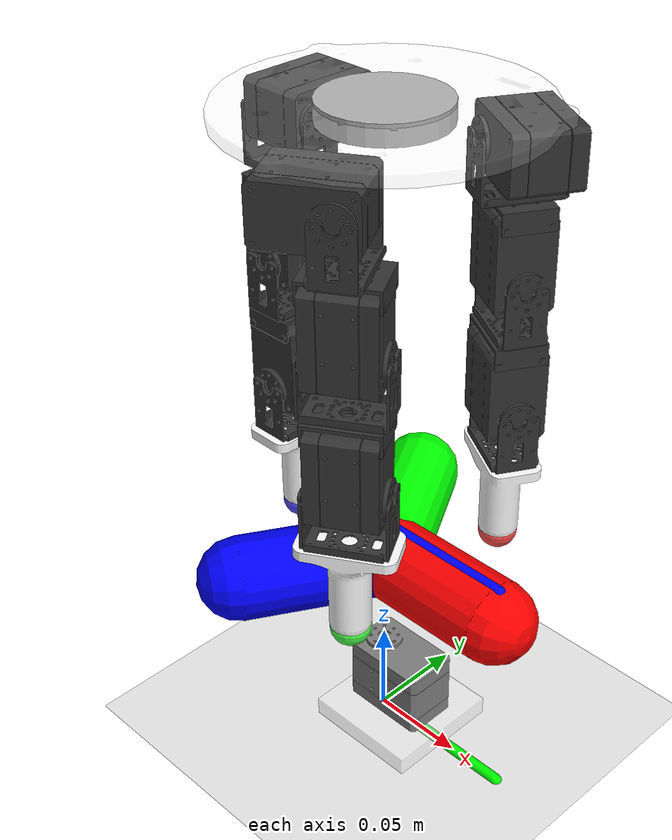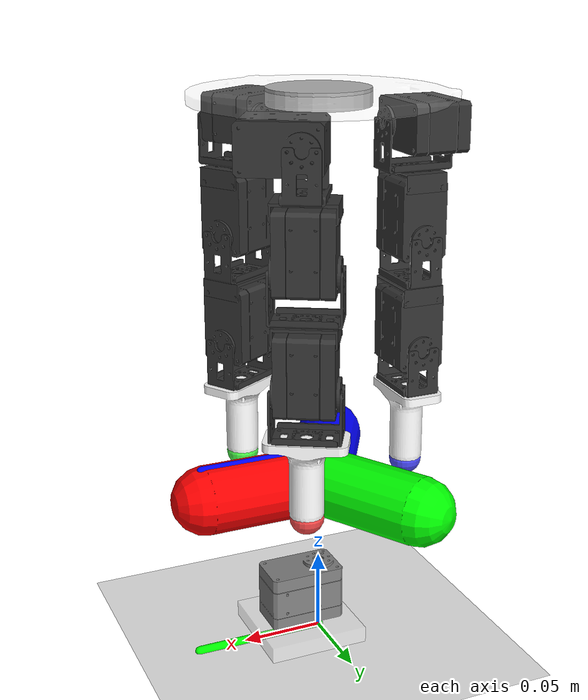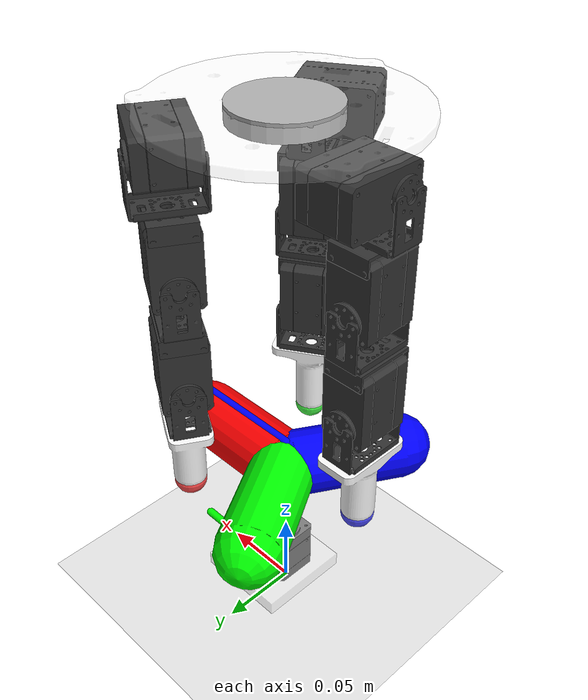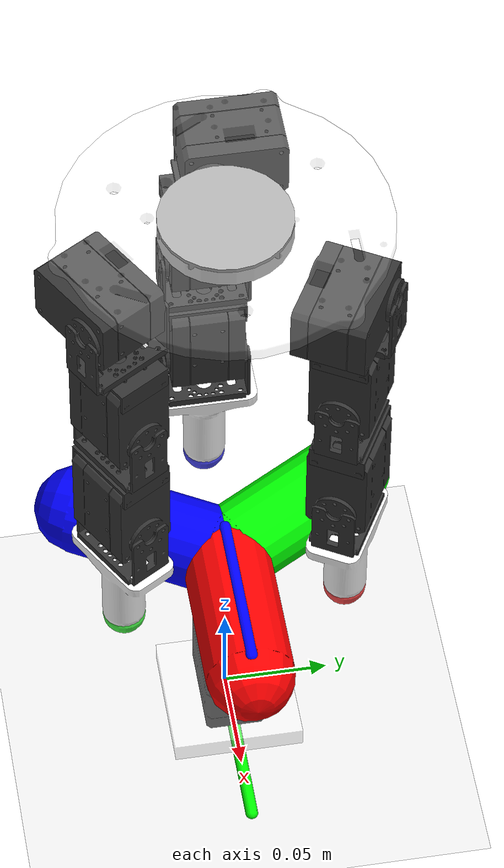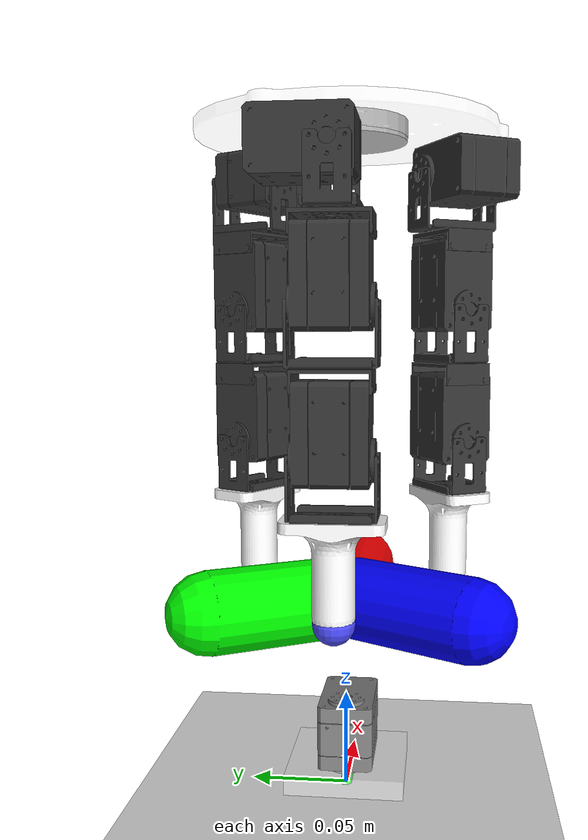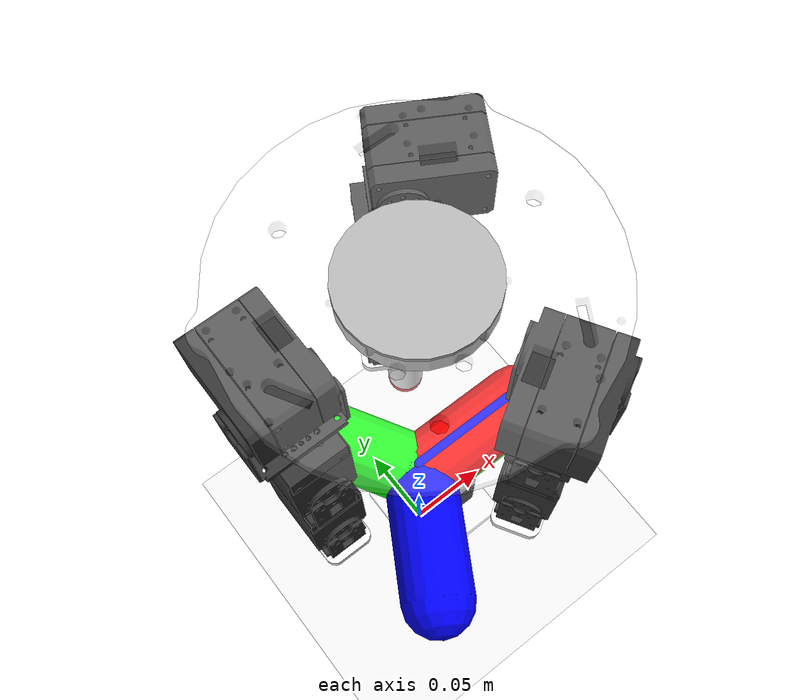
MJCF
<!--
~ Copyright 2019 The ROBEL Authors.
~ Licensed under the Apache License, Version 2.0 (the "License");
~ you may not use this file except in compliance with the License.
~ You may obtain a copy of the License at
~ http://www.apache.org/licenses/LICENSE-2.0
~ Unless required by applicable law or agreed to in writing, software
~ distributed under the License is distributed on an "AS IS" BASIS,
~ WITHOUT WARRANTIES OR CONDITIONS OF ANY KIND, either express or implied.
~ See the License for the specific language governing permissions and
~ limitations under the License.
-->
<?xml version="1.0"?>
<mujoco model="dclaw3xh_valve3">
  <include file="../../robel-scenes/scenes/basic_scene.xml"/>
  <include file="../../robel-scenes/dclaw/assets/dependencies3xh.xml"/>
  <include file="../../robel-scenes/dclaw_stations/assets/dependencies.xml"/>
  <compiler meshdir="../../robel-scenes/dclaw" texturedir="../../robel-scenes/dclaw"/>
  <worldbody>
    <camera name="targeting" pos="0.5 0.5 0.5" mode="targetbodycom" target="dClaw"/>
    <camera name="object_target" pos="0 0 0.33" mode="targetbody" target="object"/>
    <body name="mount" pos="0 0 .335" euler="0 0 0">
      <geom name="mount" type="cylinder" size="0.03 0.005" rgba=".7 .7 .7 1"/>
      <include file="../../robel-scenes/dclaw/assets/chain3xh.xml"/>
      <include file="../../robel-scenes/dclaw/assets/chain3xh_overlay.xml"/>
    </body>
    <body name="object" pos="0 0 0.0001">
      <include file="../../robel-scenes/dclaw_stations/assets/valve3.xml"/>
    </body>
    <body name="target" pos="0 0 0">
      <site name="tmark" type="capsule" size=".003 0.04" pos=".04 0 0" rgba="0 1 0 1" euler="0 1.57 0"/>
    </body>
  </worldbody>
</mujoco>

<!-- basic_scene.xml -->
<mujocoinclude>
  <asset>
    <texture name="skybox" type="skybox" builtin="gradient" rgb1=".08 .09 .10" rgb2="0 0 0" width="800" height="800" mark="random" markrgb=".8 .8 .8"/>
    <texture name="texplane" type="2d" height="1" width="1" file="../scenes/textures/white_marble_tile2.png"/>
    <material name="MatPlane" reflectance="0.05" texture="texplane" texrepeat="4 4" texuniform="true"/>
  </asset>
  <visual>
    <map fogstart="1.5" fogend="5" force="0.1" znear="0.1"/>
    <quality shadowsize="4096" offsamples="4"/>
  </visual>
  <worldbody>
    <light directional="true" diffuse=".3 .3 .3" specular="0.3 0.3 0.3" pos="-1 -1 1" dir="1 1 -1"/>
    <light directional="true" diffuse=".3 .3 .3" specular="0.3 0.3 0.3" pos="1 -1 1" dir="-1 1 -1"/>
    <light directional="true" diffuse=".3 .3 .3" specular="0.3 0.3 0.3" pos="0 1 1" dir="0 -1 -1"/>
    <geom name="floor" pos="0 0 0" size="5 5 .1" conaffinity="1" contype="1" type="plane" material="MatPlane" condim="3"/>
    <site name="xaxis" pos=".5 0 0" size=".005 .5" type="capsule" rgba="1 0 0 .25" euler="0 1.57 0" group="3"/>
    <site name="yaxis" pos="0 .5 0" size=".005 .5" type="capsule" rgba="0 1 0 .25" euler="1.57 0 0" group="3"/>
  </worldbody>
</mujocoinclude>

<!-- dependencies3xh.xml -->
<mujocoinclude>
  <compiler angle="radian" inertiafromgeom="auto" inertiagrouprange="3 5"/>
  <option timestep="0.0025" iterations="50" tolerance="1e-10" solver="Newton" jacobian="dense" cone="elliptic"/>
  <asset>
    <mesh name="xh28" file="../dclaw/meshes/xh_base_high_poly.stl" scale=".001 .001 .001"/>
    <mesh name="acrylic_circle" file="../dclaw/meshes/acrylic_circle.stl" scale=".1 .1 .1"/>
    <mesh name="plastic_finger" file="../dclaw/meshes/xh_finger_tip.stl" scale=".001 .001 .001"/>
    <mesh name="metal_clamping" file="../dclaw/meshes/xh_clamping_high_poly.stl" scale=".001 .001 .001"/>
    <mesh name="metal_clamping_small" file="../dclaw/meshes/xh_clamping_small_high_poly.stl" scale=".001 .001 .001"/>
    <mesh name="plastic_top" file="../dclaw/meshes/xh_white_top_high_poly.stl" scale=".001 .001 .001"/>
    <mesh name="xh28_hull" file="../dclaw/meshes/xh_base_hull.stl" scale=".001 .001 .001"/>
    <mesh name="xh28_hull_top" file="../dclaw/meshes/xh_base_hull_top.stl" scale=".001 .001 .001"/>
  </asset>
  <default>
    <default class="dclaw3xh">
      <joint limited="true" damping=".1" armature="0.001"/>
      <geom contype="0" conaffinity="0" condim="4" group="1" margin="0.0005" material="metal_black" type="mesh"/>
      <motor ctrlrange="-1.57 1.57" ctrllimited="true"/>
      <site group="1"/>
      <default class="overlay">
        <geom contype="0" conaffinity="0" group="3" type="mesh" material="greenish"/>
        <joint damping="100" frictionloss="100" armature="0"/>
        <site group="3"/>
      </default>
      <default class="phy_metal">
        <geom contype="1" conaffinity="1" group="4" type="mesh" rgba="0.0 0.0 1.0 .3"/>
        <site group="4"/>
      </default>
      <default class="phy_plastic">
        <geom contype="1" conaffinity="1" group="4" type="mesh" rgba="0.0 0.0 1.0 .3" friction=".2 0.005 0.0001"/>
        <site group="4"/>
      </default>
    </default>
  </default>
  <asset>
    <material name="metal_black" specular="1" shininess="1" rgba="0.2 0.2 0.2 1.0"/>
    <material name="metal_grey" specular="1" shininess="1" rgba="0.5 0.5 0.5 1.0"/>
    <material name="plastic" specular="0.3" shininess="0" rgba="1 1 1 1"/>
    <material name="acrylic" specular="0.3" shininess="0" rgba="1 1 1 .2"/>
    <material name="greenish" specular="0.0" shininess="0" rgba="0.3 1 0.3 1"/>
  </asset>
  <actuator>
    <position name="FFJ10" kp="2" joint="FFJ10" class="dclaw3xh" ctrlrange="-.48 .48"/>
    <position name="FFJ11" kp="2" joint="FFJ11" class="dclaw3xh"/>
    <position name="FFJ12" kp="2" joint="FFJ12" class="dclaw3xh"/>
    <position name="MFJ20" kp="2" joint="MFJ20" class="dclaw3xh" ctrlrange="-.48 .48"/>
    <position name="MFJ21" kp="2" joint="MFJ21" class="dclaw3xh"/>
    <position name="MFJ22" kp="2" joint="MFJ22" class="dclaw3xh"/>
    <position name="THJ30" kp="2" joint="THJ30" class="dclaw3xh" ctrlrange="-.48 .48"/>
    <position name="THJ31" kp="2" joint="THJ31" class="dclaw3xh"/>
    <position name="THJ32" kp="2" joint="THJ32" class="dclaw3xh"/>
  </actuator>
  <sensor>
    <jointpos name="FFJ10_pos_sensor" joint="FFJ10"/>
    <jointpos name="FFJ11_pos_sensor" joint="FFJ11"/>
    <jointpos name="FFJ12_pos_sensor" joint="FFJ12"/>
    <jointpos name="MFJ20_pos_sensor" joint="MFJ20"/>
    <jointpos name="MFJ21_pos_sensor" joint="MFJ21"/>
    <jointpos name="MFJ22_pos_sensor" joint="MFJ22"/>
    <jointpos name="THJ30_pos_sensor" joint="THJ30"/>
    <jointpos name="THJ31_pos_sensor" joint="THJ31"/>
    <jointpos name="THJ32_pos_sensor" joint="THJ32"/>
    <jointvel name="FFJ10_velocity_sensor" joint="FFJ10"/>
    <jointvel name="FFJ11_velocity_sensor" joint="FFJ11"/>
    <jointvel name="FFJ12_velocity_sensor" joint="FFJ12"/>
    <jointvel name="MFJ20_velocity_sensor" joint="MFJ20"/>
    <jointvel name="MFJ21_velocity_sensor" joint="MFJ21"/>
    <jointvel name="MFJ22_velocity_sensor" joint="MFJ22"/>
    <jointvel name="THJ30_velocity_sensor" joint="THJ30"/>
    <jointvel name="THJ31_velocity_sensor" joint="THJ31"/>
    <jointvel name="THJ32_velocity_sensor" joint="THJ32"/>
  </sensor>
</mujocoinclude>

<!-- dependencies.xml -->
<mujocoinclude>
  <compiler angle="radian" inertiafromgeom="auto" inertiagrouprange="3 5"/>
  <option timestep="0.0025"/>
  <asset>
    <mesh name="motor" file="../dclaw/meshes/xh_base_high_poly.stl" scale=".001 .001 .001"/>
    <mesh name="motor_hull" file="../dclaw/meshes/xh_base_hull.stl" scale=".001 .001 .001"/>
    <mesh name="valve_4" file="../dclaw_stations/meshes/valve_4_high_poly.stl" scale=".001 .001 .001"/>
    <mesh name="valve_3" file="../dclaw_stations/meshes/valve_3_high_poly.stl" scale=".001 .001 .001"/>
    <mesh name="station_base" file="../dclaw_stations/meshes/station_plastic_base.stl" scale=".001 .001 .001"/>
    <mesh name="station_metal_base" file="../dclaw_stations/meshes/station_metal_base.stl" scale=".001 .001 .001"/>
    <mesh name="station_surface" file="../dclaw_stations/meshes/station_surface.stl" scale=".001 .001 .001"/>
    <mesh name="station_plastic_walls" file="../dclaw_stations/meshes/station_plastic_walls.stl" scale=".001 .001 .001"/>
    <material name="station_metal_grey" specular="1" shininess="1" rgba="0.5 0.5 0.5 1.0"/>
    <material name="plastic_white" specular="0.3" shininess="0" rgba="1 1 1 1"/>
    <material name="plastic_grey" specular="0.3" shininess="0" rgba="0.5 0.5 0.5 1.0"/>
    <material name="plastic_black" specular="0.3" shininess="0" rgba="0.02 0.02 0.02 1.0"/>
    <material name="plastic_transparent" specular="0.3" shininess="0" rgba="1 1 1 0.4"/>
  </asset>
  <default>
    <default class="station">
      <joint limited="true" damping=".1" armature="0.001"/>
      <geom contype="1" conaffinity="1" condim="4" group="2" margin="0.0005"/>
      <site group="2"/>
      <default class="station_viz">
        <geom contype="0" conaffinity="0" type="mesh"/>
        <default class="station_viz_metal_grey">
          <geom material="station_metal_grey"/>
        </default>
        <default class="station_viz_plastic_black">
          <geom material="plastic_black"/>
        </default>
        <default class="station_viz_plastic_grey">
          <geom material="plastic_grey"/>
        </default>
        <default class="station_viz_plastic_white">
          <geom material="plastic_white"/>
        </default>
        <default class="station_viz_plastic_transparent">
          <geom material="plastic_transparent"/>
        </default>
      </default>
      <default class="station_phy">
        <geom contype="1" conaffinity="1" group="4" type="mesh" rgba="0.0 0.0 1.0 .3"/>
        <site group="4"/>
        <default class="station_phy_metal">
          <geom material="station_metal_grey"/>
        </default>
        <default class="station_phy_plastic">
          <geom material="station_metal_grey" friction=".2 0.005 0.0001"/>
        </default>
      </default>
    </default>
  </default>
</mujocoinclude>

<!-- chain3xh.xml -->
<mujocoinclude>
  <body name="dClaw" euler="3.14 0 0" childclass="dclaw3xh">
    <geom material="acrylic" mesh="acrylic_circle"/>
    <geom class="phy_metal" type="cylinder" size="0.075 0.004" mass=".11"/>
    <site name="S_grasp" pos="0 0 0.24" type="sphere" size="0.01" group="4"/>
    <!-- INDEX/FIRST FINGER -->
    <body name="FFbase" pos=".03 -0.052 .003" euler="0 0 .52">
      <geom mesh="xh28" pos="0 0 0.01425" euler="1.57 0 1.57"/>
      <geom class="phy_metal" type="box" pos=".012 0 0.014" size="0.024 0.0175 0.015" mass=".093"/>
      <body name="FF10" pos="0 0 0.01425" euler="0 0 3.14">
        <geom mesh="metal_clamping" euler="0 0 1.57"/>
        <geom mesh="metal_clamping_small" pos="0 0 0.055" euler="3.14 0 0"/>
        <geom mesh="xh28" pos="0 0 0.068" euler="1.57 1.57 0"/>
        <geom class="phy_metal" type="box" pos="0 0 0.056" size="0.0175 0.015 0.024" mass=".093"/>
        <geom class="phy_metal" type="box" pos="0.0 0 0.026" size="0.0125 0.0214 0.003" mass=".003"/>
        <geom class="phy_metal" type="box" pos="0 0.02 0.013" size="0.011 0.0012 0.016" mass=".002"/>
        <geom class="phy_metal" type="box" pos="0 -0.02 0.013" size="0.011 0.0012 0.016" mass=".002"/>
        <geom class="phy_metal" type="box" pos="0 0 0.033" size="0.019 0.014 0.006" mass=".005"/>
        <joint name="FFJ10" type="hinge" axis="0 1 0" range="-.45 1.35"/>
        <body name="FFL11" pos="0 0 0.0675">
          <geom mesh="metal_clamping_small" pos="0 0 0.055" euler="3.14 0 0"/>
          <geom mesh="xh28" pos="0 0 0.0686" euler="1.57 1.57 0"/>
          <geom mesh="metal_clamping"/>
          <geom class="phy_metal" type="box" pos="0 0 0.056" size="0.0175 0.015 0.024" mass=".093"/>
          <geom class="phy_metal" type="box" pos="0 0 0.026" size="0.0214 0.0125 0.003" mass=".003"/>
          <geom class="phy_metal" type="box" pos="0.02 0 0.013" size="0.0012 0.011 0.016" mass=".002"/>
          <geom class="phy_metal" type="box" pos="-0.02 0 0.013" size="0.0012 0.011 0.016" mass=".002"/>
          <geom class="phy_metal" type="box" pos="0 0 0.033" size="0.019 0.014 0.006" mass=".005"/>
          <joint name="FFJ11" type="hinge" axis="1 0 0" range="-2 2"/>
          <body name="FFL12" pos="0 0 0.068">
            <geom mesh="metal_clamping"/>
            <geom material="plastic" mesh="plastic_finger" pos="0 0 0.046"/>
            <geom class="phy_metal" type="box" pos="0.0 0 0.026" size="0.0214 0.0125 0.003" mass=".003"/>
            <geom class="phy_metal" type="box" pos="0.02 0 0.013" size="0.0012 0.011 0.016" mass=".002"/>
            <geom class="phy_metal" type="box" pos="-0.02 0 0.013" size="0.0012 0.011 0.016" mass=".002"/>
            <geom class="phy_plastic" type="capsule" pos="0 0 0.053" size="0.011 0.02" mass=".018"/>
            <geom class="phy_plastic" type="box" pos="0 0 0.03" size="0.0245 0.014 0.003" mass=".007"/>
            <joint name="FFJ12" type="hinge" axis="1 0 0" range="-2 2"/>
            <site name="FFtip" type="sphere" pos="0 0 .076" size="0.01" rgba="1 .3 .3 1"/>
          </body>
        </body>
      </body>
    </body>
    <!-- MIDDLE FINGER -->
    <body name="MFbase" pos=".03 0.052 .003" euler="0 0 2.6">
      <geom mesh="xh28" pos="0 0 0.01425" euler="1.57 0 1.57"/>
      <geom class="phy_metal" type="box" pos=".012 0 0.014" size="0.024 0.0175 0.015" mass=".093"/>
      <body name="MF20" pos="0 0 0.01425" euler="0 0 3.14">
        <geom mesh="metal_clamping" euler="0 0 1.57"/>
        <geom mesh="metal_clamping_small" pos="0 0 0.055" euler="3.14 0 0"/>
        <geom mesh="xh28" pos="0 0 0.068" euler="1.57 1.57 0"/>
        <geom class="phy_metal" type="box" pos="0 0 0.056" size="0.0175 0.015 0.024" mass=".093"/>
        <geom class="phy_metal" type="box" pos="0.0 0 0.026" size="0.0125 0.0214 0.003" mass=".003"/>
        <geom class="phy_metal" type="box" pos="0 0.02 0.013" size="0.011 0.0012 0.016" mass=".002"/>
        <geom class="phy_metal" type="box" pos="0 -0.02 0.013" size="0.011 0.0012 0.016" mass=".002"/>
        <geom class="phy_metal" type="box" pos="0 0 0.033" size="0.019 0.014 0.006" mass=".005"/>
        <joint name="MFJ20" type="hinge" axis="0 1 0" range="-.45 1.35"/>
        <body name="MFL21" pos="0 0 0.0675">
          <geom mesh="metal_clamping_small" pos="0 0 0.055" euler="3.14 0 0"/>
          <geom mesh="xh28" pos="0 0 0.0686" euler="1.57 1.57 0"/>
          <geom mesh="metal_clamping"/>
          <geom class="phy_metal" type="box" pos="0 0 0.056" size="0.0175 0.015 0.024" mass=".093"/>
          <geom class="phy_metal" type="box" pos="0 0 0.026" size="0.0214 0.0125 0.003" mass=".003"/>
          <geom class="phy_metal" type="box" pos="0.02 0 0.013" size="0.0012 0.011 0.016" mass=".002"/>
          <geom class="phy_metal" type="box" pos="-0.02 0 0.013" size="0.0012 0.011 0.016" mass=".002"/>
          <geom class="phy_metal" type="box" pos="0 0 0.033" size="0.019 0.014 0.006" mass=".005"/>
          <joint name="MFJ21" type="hinge" axis="1 0 0" range="-2 2"/>
          <body name="MFL22" pos="0 0 0.068">
            <geom mesh="metal_clamping"/>
            <geom material="plastic" mesh="plastic_finger" pos="0 0 0.046"/>
            <geom class="phy_metal" type="box" pos="0.0 0 0.026" size="0.0214 0.0125 0.003" mass=".003"/>
            <geom class="phy_metal" type="box" pos="0.02 0 0.013" size="0.0012 0.011 0.016" mass=".002"/>
            <geom class="phy_metal" type="box" pos="-0.02 0 0.013" size="0.0012 0.011 0.016" mass=".002"/>
            <geom class="phy_plastic" type="capsule" pos="0 0 0.053" size="0.011 0.02" mass=".018"/>
            <geom class="phy_plastic" type="box" pos="0 0 0.03" size="0.0245 0.014 0.003" mass=".007"/>
            <joint name="MFJ22" type="hinge" axis="1 0 0" range="-2 2"/>
            <site name="MFtip" type="sphere" pos="0 0 .076" size="0.01" rgba=".3 1 .3 1"/>
          </body>
        </body>
      </body>
    </body>
    <!-- THUMB -->
    <body name="THbase" pos="-.06 0 .003" euler="0 0 -1.57">
      <geom mesh="xh28" pos="0 0 0.01425" euler="1.57 0 1.57"/>
      <geom class="phy_metal" type="box" pos=".012 0 0.014" size="0.024 0.0175 0.015" mass=".093"/>
      <body name="TH30" pos="0 0 0.01425" euler="0 0 3.14">
        <geom mesh="metal_clamping" euler="0 0 1.57"/>
        <geom mesh="metal_clamping_small" pos="0 0 0.055" euler="3.14 0 0"/>
        <geom mesh="xh28" pos="0 0 0.068" euler="1.57 1.57 0"/>
        <geom class="phy_metal" type="box" pos="0 0 0.056" size="0.0175 0.015 0.024" mass=".093"/>
        <geom class="phy_metal" type="box" pos="0.0 0 0.026" size="0.0125 0.0214 0.003" mass=".003"/>
        <geom class="phy_metal" type="box" pos="0 0.02 0.013" size="0.011 0.0012 0.016" mass=".002"/>
        <geom class="phy_metal" type="box" pos="0 -0.02 0.013" size="0.011 0.0012 0.016" mass=".002"/>
        <geom class="phy_metal" type="box" pos="0 0 0.033" size="0.019 0.014 0.006" mass=".005"/>
        <joint name="THJ30" type="hinge" axis="0 1 0" range="-.45 1.35"/>
        <body name="THL31" pos="0 0 0.0675">
          <geom mesh="metal_clamping_small" pos="0 0 0.055" euler="3.14 0 0"/>
          <geom mesh="xh28" pos="0 0 0.0686" euler="1.57 1.57 0"/>
          <geom mesh="metal_clamping"/>
          <geom class="phy_metal" type="box" pos="0 0 0.056" size="0.0175 0.015 0.024" mass=".093"/>
          <geom class="phy_metal" type="box" pos="0 0 0.026" size="0.0214 0.0125 0.003" mass=".003"/>
          <geom class="phy_metal" type="box" pos="0.02 0 0.013" size="0.0012 0.011 0.016" mass=".002"/>
          <geom class="phy_metal" type="box" pos="-0.02 0 0.013" size="0.0012 0.011 0.016" mass=".002"/>
          <geom class="phy_metal" type="box" pos="0 0 0.033" size="0.019 0.014 0.006" mass=".005"/>
          <joint name="THJ31" type="hinge" axis="1 0 0" range="-2 2"/>
          <body name="THL32" pos="0 0 0.068">
            <geom mesh="metal_clamping"/>
            <geom material="plastic" mesh="plastic_finger" pos="0 0 0.046"/>
            <geom class="phy_metal" type="box" pos="0.0 0 0.026" size="0.0214 0.0125 0.003" mass=".003"/>
            <geom class="phy_metal" type="box" pos="0.02 0 0.013" size="0.0012 0.011 0.016" mass=".002"/>
            <geom class="phy_metal" type="box" pos="-0.02 0 0.013" size="0.0012 0.011 0.016" mass=".002"/>
            <geom class="phy_plastic" type="capsule" pos="0 0 0.053" size="0.011 0.02" mass=".018"/>
            <geom class="phy_plastic" type="box" pos="0 0 0.03" size="0.0245 0.014 0.003" mass=".007"/>
            <joint name="THJ32" type="hinge" axis="1 0 0" range="-2 2"/>
            <site name="THtip" type="sphere" pos="0 0 .076" size="0.01" rgba=".3 .3 1 1"/>
          </body>
        </body>
      </body>
    </body>
  </body>
</mujocoinclude>

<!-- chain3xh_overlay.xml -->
<mujocoinclude>
  <body name="_dclaw" euler="3.14 0 0" childclass="overlay">
    <geom mesh="acrylic_circle"/>
    <!-- INDEX/FIRST FINGER -->
    <body name="_FFbase" pos=".03 -0.052 .003" euler="0 0 .52">
      <geom mesh="xh28" pos="0 0 0.01425" euler="1.57 0 1.57"/>
      <body name="_FF10" pos="0 0 0.01425" euler="0 0 3.14">
        <geom mesh="metal_clamping" euler="0 0 1.57"/>
        <geom mesh="metal_clamping_small" pos="0 0 0.055" euler="3.14 0 0"/>
        <geom mesh="xh28" pos="0 0 0.068" euler="1.57 1.57 0"/>
        <joint name="_FFJ10" type="hinge" axis="0 1 0" range="-.45 1.35"/>
        <body name="_FFL11" pos="0 0 0.0675">
          <geom mesh="metal_clamping_small" pos="0 0 0.055" euler="3.14 0 0"/>
          <geom mesh="xh28" pos="0 0 0.0686" euler="1.57 1.57 0"/>
          <geom mesh="metal_clamping"/>
          <joint name="_FFJ11" type="hinge" axis="1 0 0" range="-2 2"/>
          <body name="_FFL12" pos="0 0 0.068">
            <geom mesh="metal_clamping"/>
            <geom mesh="plastic_finger" pos="0 0 0.046"/>
            <joint name="_FFJ12" type="hinge" axis="1 0 0" range="-2 2"/>
            <site name="_FFtip" type="sphere" pos="0 0 .076" size="0.01" rgba="1 .3 .3 1"/>
          </body>
        </body>
      </body>
    </body>
    <!-- MIDDLE FINGER -->
    <body name="_MFbase" pos=".03 0.052 .003" euler="0 0 2.62">
      <geom mesh="xh28" pos="0 0 0.01425" euler="1.57 0 1.57"/>
      <body name="_MF20" pos="0 0 0.01425" euler="0 0 3.14">
        <geom mesh="metal_clamping" euler="0 0 1.57"/>
        <geom mesh="metal_clamping_small" pos="0 0 0.055" euler="3.14 0 0"/>
        <geom mesh="xh28" pos="0 0 0.068" euler="1.57 1.57 0"/>
        <joint name="_MFJ20" type="hinge" axis="0 1 0" range="-.45 1.35"/>
        <body name="_MFL21" pos="0 0 0.0675">
          <geom mesh="metal_clamping_small" pos="0 0 0.055" euler="3.14 0 0"/>
          <geom mesh="xh28" pos="0 0 0.0686" euler="1.57 1.57 0"/>
          <geom mesh="metal_clamping"/>
          <joint name="_MFJ21" type="hinge" axis="1 0 0" range="-2 2"/>
          <body name="_MFL22" pos="0 0 0.068">
            <geom mesh="metal_clamping"/>
            <geom mesh="plastic_finger" pos="0 0 0.046"/>
            <joint name="_MFJ22" type="hinge" axis="1 0 0" range="-2 2"/>
            <site name="_MFtip" type="sphere" pos="0 0 .076" size="0.01" rgba=".3 1 .3 1"/>
          </body>
        </body>
      </body>
    </body>
    <!-- THUMB -->
    <body name="_THbase" pos="-.06 0 .003" euler="0 0 -1.57">
      <geom mesh="xh28" pos="0 0 0.01425" euler="1.57 0 1.57"/>
      <body name="_TH30" pos="0 0 0.01425" euler="0 0 3.14">
        <geom mesh="metal_clamping" euler="0 0 1.57"/>
        <geom mesh="metal_clamping_small" pos="0 0 0.055" euler="3.14 0 0"/>
        <geom mesh="xh28" pos="0 0 0.068" euler="1.57 1.57 0"/>
        <joint name="_THJ30" type="hinge" axis="0 1 0" range="-.45 1.35"/>
        <body name="_THL31" pos="0 0 0.0675">
          <geom mesh="metal_clamping_small" pos="0 0 0.055" euler="3.14 0 0"/>
          <geom mesh="xh28" pos="0 0 0.0686" euler="1.57 1.57 0"/>
          <geom mesh="metal_clamping"/>
          <joint name="_THJ31" type="hinge" axis="1 0 0" range="-2 2"/>
          <body name="_THL32" pos="0 0 0.068">
            <geom mesh="metal_clamping"/>
            <geom mesh="plastic_finger" pos="0 0 0.046"/>
            <joint name="_THJ32" type="hinge" axis="1 0 0" range="-2 2"/>
            <site name="_THtip" type="sphere" pos="0 0 .076" size="0.01" rgba=".3 .3 1 1"/>
          </body>
        </body>
      </body>
    </body>
  </body>
</mujocoinclude>

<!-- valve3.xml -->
<mujocoinclude name="valve3">
  <body name="valve_base" pos=".0 0.00 0.01" euler="0 0 0" childclass="station">
    <geom class="station_viz_plastic_transparent" type="box" size=".031 .031 .005" pos=".0125 0 -.005"/>
    <geom class="station_viz_metal_grey" mesh="motor" pos="0 0 0.018" euler="0 0 1.57"/>
    <geom class="station_phy_metal" mesh="motor_hull" pos="0 0 0.018" euler="0 0 1.57"/>
    <body name="valve" pos="0 0 0.038" euler="0 0 -1.57">
      <geom type="capsule" pos="0.0 0.038 0.054" size="0.021 0.035" rgba="1 0 0 1" euler="1.57 0 0" group="2"/>
      <geom type="capsule" pos="-0.034 -0.019 0.054" size="0.021 0.035" rgba="0 1 0 1" euler="1.57 2.0944 0" group="2"/>
      <geom type="capsule" pos="0.034 -0.019 0.054" size="0.021 0.035" rgba="0 0 1 1" euler="1.57 4.1887 0"  group="2"/>
      <geom class="station_phy_plastic" type="capsule" pos="0.0 0.038 0.054" size="0.021 0.035" rgba="1 0 0 1" euler="1.57 0 0"/>
      <geom class="station_phy_plastic" type="capsule" pos="-0.034 -0.019 0.054" size="0.021 0.035" rgba="0 1 0 1" euler="1.57 2.0944 0"/>
      <geom class="station_phy_plastic" type="capsule" pos="0.034 -0.019 0.054" size="0.021 0.035" rgba="0 0 1 1" euler="1.57 4.1887 0"/>
      <geom class="station_phy_plastic" type="cylinder" pos="0.0 0.0 0.027" size="0.02 0.0275"/>
      <site name="valve_mark" type="capsule" size=".003 0.0375" pos="0 .0375 .073" rgba="0 0 1 1" euler="1.57 0 0"/>
      <joint name="valve_OBJRx" pos="0 0 0" type="hinge" axis="0 0 1" range="-6.28 6.28" damping=".1" limited="true"/>
    </body>
  </body>
</mujocoinclude>
